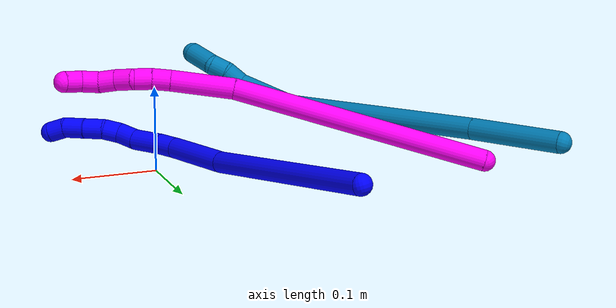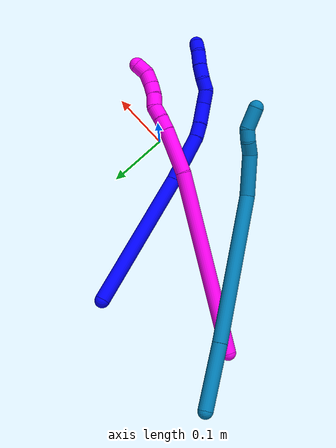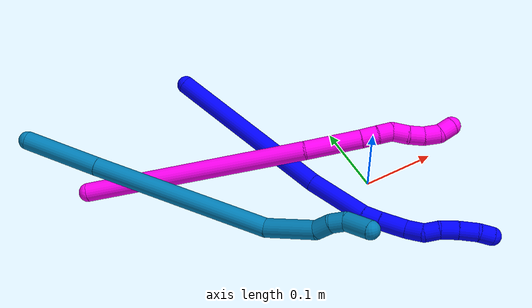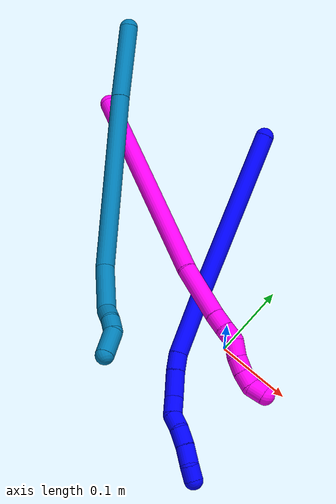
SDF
<sdf version="1.7">
 <world name="default">
  <model name="1">
   <static>0</static>
   <link name="1">
    <collision name="collision-cylinder-e_1_1_4">
     <pose>0.101535 -0.058134 -0.023524 1.95531 1.0175 1.38237</pose>
     <geometry><cylinder><radius>0.0125</radius><length>0.238681</length></cylinder></geometry>
     <surface>
      <friction><ode><mu>1.16</mu><mu2>1.16</mu2><slip1>0</slip1><slip2>0</slip2></ode></friction>
      <contact><ode><kp>1e+06</kp><kd>1</kd><max_vel>0</max_vel><min_depth>0.001</min_depth></ode></contact>
     </surface>
    </collision>
    <visual name="visual-cylinder-e_1_1_4">
     <pose>0.101535 -0.058134 -0.023524 1.95531 1.0175 1.38237</pose>
     <geometry><cylinder><radius>0.0125</radius><length>0.238681</length></cylinder></geometry>
     <material><ambient>0 0 1 1</ambient></material>
    </visual>
    <collision name="collision-cylinder-e_2_4_5">
     <pose>0.237876 -0.137309 -0.060192 2.12916 0.951533 1.49761</pose>
     <geometry><cylinder><radius>0.0125</radius><length>0.085487</length></cylinder></geometry>
     <surface>
      <friction><ode><mu>1.16</mu><mu2>1.16</mu2><slip1>0</slip1><slip2>0</slip2></ode></friction>
      <contact><ode><kp>1e+06</kp><kd>1</kd><max_vel>0</max_vel><min_depth>0.001</min_depth></ode></contact>
     </surface>
    </collision>
    <visual name="visual-cylinder-e_2_4_5">
     <pose>0.237876 -0.137309 -0.060192 2.12916 0.951533 1.49761</pose>
     <geometry><cylinder><radius>0.0125</radius><length>0.085487</length></cylinder></geometry>
     <material><ambient>0 0 1 1</ambient></material>
    </visual>
    <collision name="collision-cylinder-e_3_5_6">
     <pose>0.280825 -0.166013 -0.077671 2.08564 0.746467 1.1826</pose>
     <geometry><cylinder><radius>0.0125</radius><length>0.023983</length></cylinder></geometry>
     <surface>
      <friction><ode><mu>1.16</mu><mu2>1.16</mu2><slip1>0</slip1><slip2>0</slip2></ode></friction>
      <contact><ode><kp>1e+06</kp><kd>1</kd><max_vel>0</max_vel><min_depth>0.001</min_depth></ode></contact>
     </surface>
    </collision>
    <visual name="visual-cylinder-e_3_5_6">
     <pose>0.280825 -0.166013 -0.077671 2.08564 0.746467 1.1826</pose>
     <geometry><cylinder><radius>0.0125</radius><length>0.023983</length></cylinder></geometry>
     <material><ambient>0 0 1 1</ambient></material>
    </visual>
    <collision name="collision-cylinder-e_4_6_7">
     <pose>0.300408 -0.186726 -0.088112 2.00847 0.671065 1.00291</pose>
     <geometry><cylinder><radius>0.0125</radius><length>0.036797</length></cylinder></geometry>
     <surface>
      <friction><ode><mu>1.16</mu><mu2>1.16</mu2><slip1>0</slip1><slip2>0</slip2></ode></friction>
      <contact><ode><kp>1e+06</kp><kd>1</kd><max_vel>0</max_vel><min_depth>0.001</min_depth></ode></contact>
     </surface>
    </collision>
    <visual name="visual-cylinder-e_4_6_7">
     <pose>0.300408 -0.186726 -0.088112 2.00847 0.671065 1.00291</pose>
     <geometry><cylinder><radius>0.0125</radius><length>0.036797</length></cylinder></geometry>
     <material><ambient>0 0 1 1</ambient></material>
    </visual>
    <collision name="collision-cylinder-e_5_7_8">
     <pose>0.318911 -0.207614 -0.100344 2.23411 0.617372 1.15818</pose>
     <geometry><cylinder><radius>0.0125</radius><length>0.024397</length></cylinder></geometry>
     <surface>
      <friction><ode><mu>1.16</mu><mu2>1.16</mu2><slip1>0</slip1><slip2>0</slip2></ode></friction>
      <contact><ode><kp>1e+06</kp><kd>1</kd><max_vel>0</max_vel><min_depth>0.001</min_depth></ode></contact>
     </surface>
    </collision>
    <visual name="visual-cylinder-e_5_7_8">
     <pose>0.318911 -0.207614 -0.100344 2.23411 0.617372 1.15818</pose>
     <geometry><cylinder><radius>0.0125</radius><length>0.024397</length></cylinder></geometry>
     <material><ambient>0 0 1 1</ambient></material>
    </visual>
    <collision name="collision-cylinder-e_6_8_9">
     <pose>0.327604 -0.224318 -0.11143 2.08095 0.159218 0.270457</pose>
     <geometry><cylinder><radius>0.0125</radius><length>0.020581</length></cylinder></geometry>
     <surface>
      <friction><ode><mu>1.16</mu><mu2>1.16</mu2><slip1>0</slip1><slip2>0</slip2></ode></friction>
      <contact><ode><kp>1e+06</kp><kd>1</kd><max_vel>0</max_vel><min_depth>0.001</min_depth></ode></contact>
     </surface>
    </collision>
    <visual name="visual-cylinder-e_6_8_9">
     <pose>0.327604 -0.224318 -0.11143 2.08095 0.159218 0.270457</pose>
     <geometry><cylinder><radius>0.0125</radius><length>0.020581</length></cylinder></geometry>
     <material><ambient>0 0 1 1</ambient></material>
    </visual>
    <collision name="collision-cylinder-e_7_9_10">
     <pose>0.332927 -0.244196 -0.119938 1.8824 0.308879 0.421065</pose>
     <geometry><cylinder><radius>0.0125</radius><length>0.024286</length></cylinder></geometry>
     <surface>
      <friction><ode><mu>1.16</mu><mu2>1.16</mu2><slip1>0</slip1><slip2>0</slip2></ode></friction>
      <contact><ode><kp>1e+06</kp><kd>1</kd><max_vel>0</max_vel><min_depth>0.001</min_depth></ode></contact>
     </surface>
    </collision>
    <visual name="visual-cylinder-e_7_9_10">
     <pose>0.332927 -0.244196 -0.119938 1.8824 0.308879 0.421065</pose>
     <geometry><cylinder><radius>0.0125</radius><length>0.024286</length></cylinder></geometry>
     <material><ambient>0 0 1 1</ambient></material>
    </visual>
    <collision name="collision-cylinder-e_8_10_11">
     <pose>0.341734 -0.266354 -0.127057 1.88091 0.412116 0.55801</pose>
     <geometry><cylinder><radius>0.0125</radius><length>0.025548</length></cylinder></geometry>
     <surface>
      <friction><ode><mu>1.16</mu><mu2>1.16</mu2><slip1>0</slip1><slip2>0</slip2></ode></friction>
      <contact><ode><kp>1e+06</kp><kd>1</kd><max_vel>0</max_vel><min_depth>0.001</min_depth></ode></contact>
     </surface>
    </collision>
    <visual name="visual-cylinder-e_8_10_11">
     <pose>0.341734 -0.266354 -0.127057 1.88091 0.412116 0.55801</pose>
     <geometry><cylinder><radius>0.0125</radius><length>0.025548</length></cylinder></geometry>
     <material><ambient>0 0 1 1</ambient></material>
    </visual>
    <collision name="collision-cylinder-e_9_11_2">
     <pose>0.350822 -0.286804 -0.13036 1.54194 0.403279 0.392103</pose>
     <geometry><cylinder><radius>0.0125</radius><length>0.020239</length></cylinder></geometry>
     <surface>
      <friction><ode><mu>1.16</mu><mu2>1.16</mu2><slip1>0</slip1><slip2>0</slip2></ode></friction>
      <contact><ode><kp>1e+06</kp><kd>1</kd><max_vel>0</max_vel><min_depth>0.001</min_depth></ode></contact>
     </surface>
    </collision>
    <visual name="visual-cylinder-e_9_11_2">
     <pose>0.350822 -0.286804 -0.13036 1.54194 0.403279 0.392103</pose>
     <geometry><cylinder><radius>0.0125</radius><length>0.020239</length></cylinder></geometry>
     <material><ambient>0 0 1 1</ambient></material>
    </visual>
    <collision name="collision-sphere-2">
     <pose>0.354794 -0.296108 -0.130091 0 -0 0</pose>
     <geometry><sphere><radius>0.0125</radius></sphere></geometry>
     <surface>
      <friction><ode><mu>1.16</mu><mu2>1.16</mu2><slip1>0</slip1><slip2>0</slip2></ode></friction>
      <contact><ode><kp>1e+06</kp><kd>1</kd><max_vel>0</max_vel><min_depth>0.001</min_depth></ode></contact>
     </surface>
    </collision>
    <visual name="visual-sphere-2">
     <pose>0.354794 -0.296108 -0.130091 0 -0 0</pose>
     <geometry><sphere><radius>0.0125</radius></sphere></geometry>
     <material><ambient>0 0 1 1</ambient></material>
    </visual>
    <collision name="collision-sphere-11">
     <pose>0.346851 -0.2775 -0.130628 0 -0 0</pose>
     <geometry><sphere><radius>0.0125</radius></sphere></geometry>
     <surface>
      <friction><ode><mu>1.16</mu><mu2>1.16</mu2><slip1>0</slip1><slip2>0</slip2></ode></friction>
      <contact><ode><kp>1e+06</kp><kd>1</kd><max_vel>0</max_vel><min_depth>0.001</min_depth></ode></contact>
     </surface>
    </collision>
    <visual name="visual-sphere-11">
     <pose>0.346851 -0.2775 -0.130628 0 -0 0</pose>
     <geometry><sphere><radius>0.0125</radius></sphere></geometry>
     <material><ambient>0 0 1 1</ambient></material>
    </visual>
    <collision name="collision-sphere-10">
     <pose>0.336618 -0.255207 -0.123485 0 -0 0</pose>
     <geometry><sphere><radius>0.0125</radius></sphere></geometry>
     <surface>
      <friction><ode><mu>1.16</mu><mu2>1.16</mu2><slip1>0</slip1><slip2>0</slip2></ode></friction>
      <contact><ode><kp>1e+06</kp><kd>1</kd><max_vel>0</max_vel><min_depth>0.001</min_depth></ode></contact>
     </surface>
    </collision>
    <visual name="visual-sphere-10">
     <pose>0.336618 -0.255207 -0.123485 0 -0 0</pose>
     <geometry><sphere><radius>0.0125</radius></sphere></geometry>
     <material><ambient>0 0 1 1</ambient></material>
    </visual>
    <collision name="collision-sphere-9">
     <pose>0.329235 -0.233185 -0.116391 0 -0 0</pose>
     <geometry><sphere><radius>0.0125</radius></sphere></geometry>
     <surface>
      <friction><ode><mu>1.16</mu><mu2>1.16</mu2><slip1>0</slip1><slip2>0</slip2></ode></friction>
      <contact><ode><kp>1e+06</kp><kd>1</kd><max_vel>0</max_vel><min_depth>0.001</min_depth></ode></contact>
     </surface>
    </collision>
    <visual name="visual-sphere-9">
     <pose>0.329235 -0.233185 -0.116391 0 -0 0</pose>
     <geometry><sphere><radius>0.0125</radius></sphere></geometry>
     <material><ambient>0 0 1 1</ambient></material>
    </visual>
    <collision name="collision-sphere-4">
     <pose>0.203069 -0.116267 -0.047048 0 -0 0</pose>
     <geometry><sphere><radius>0.0125</radius></sphere></geometry>
     <surface>
      <friction><ode><mu>1.16</mu><mu2>1.16</mu2><slip1>0</slip1><slip2>0</slip2></ode></friction>
      <contact><ode><kp>1e+06</kp><kd>1</kd><max_vel>0</max_vel><min_depth>0.001</min_depth></ode></contact>
     </surface>
    </collision>
    <visual name="visual-sphere-4">
     <pose>0.203069 -0.116267 -0.047048 0 -0 0</pose>
     <geometry><sphere><radius>0.0125</radius></sphere></geometry>
     <material><ambient>0 0 1 1</ambient></material>
    </visual>
    <collision name="collision-sphere-1">
     <geometry><sphere><radius>0.0125</radius></sphere></geometry>
     <surface>
      <friction><ode><mu>1.16</mu><mu2>1.16</mu2><slip1>0</slip1><slip2>0</slip2></ode></friction>
      <contact><ode><kp>1e+06</kp><kd>1</kd><max_vel>0</max_vel><min_depth>0.001</min_depth></ode></contact>
     </surface>
    </collision>
    <visual name="visual-sphere-1">
     <geometry><sphere><radius>0.0125</radius></sphere></geometry>
     <material><ambient>0 0 1 1</ambient></material>
    </visual>
    <collision name="collision-sphere-8">
     <pose>0.325972 -0.215451 -0.106468 0 -0 0</pose>
     <geometry><sphere><radius>0.0125</radius></sphere></geometry>
     <surface>
      <friction><ode><mu>1.16</mu><mu2>1.16</mu2><slip1>0</slip1><slip2>0</slip2></ode></friction>
      <contact><ode><kp>1e+06</kp><kd>1</kd><max_vel>0</max_vel><min_depth>0.001</min_depth></ode></contact>
     </surface>
    </collision>
    <visual name="visual-sphere-8">
     <pose>0.325972 -0.215451 -0.106468 0 -0 0</pose>
     <geometry><sphere><radius>0.0125</radius></sphere></geometry>
     <material><ambient>0 0 1 1</ambient></material>
    </visual>
    <collision name="collision-sphere-5">
     <pose>0.272682 -0.158351 -0.073336 0 -0 0</pose>
     <geometry><sphere><radius>0.0125</radius></sphere></geometry>
     <surface>
      <friction><ode><mu>1.16</mu><mu2>1.16</mu2><slip1>0</slip1><slip2>0</slip2></ode></friction>
      <contact><ode><kp>1e+06</kp><kd>1</kd><max_vel>0</max_vel><min_depth>0.001</min_depth></ode></contact>
     </surface>
    </collision>
    <visual name="visual-sphere-5">
     <pose>0.272682 -0.158351 -0.073336 0 -0 0</pose>
     <geometry><sphere><radius>0.0125</radius></sphere></geometry>
     <material><ambient>0 0 1 1</ambient></material>
    </visual>
    <collision name="collision-sphere-6">
     <pose>0.288968 -0.173675 -0.082005 0 -0 0</pose>
     <geometry><sphere><radius>0.0125</radius></sphere></geometry>
     <surface>
      <friction><ode><mu>1.16</mu><mu2>1.16</mu2><slip1>0</slip1><slip2>0</slip2></ode></friction>
      <contact><ode><kp>1e+06</kp><kd>1</kd><max_vel>0</max_vel><min_depth>0.001</min_depth></ode></contact>
     </surface>
    </collision>
    <visual name="visual-sphere-6">
     <pose>0.288968 -0.173675 -0.082005 0 -0 0</pose>
     <geometry><sphere><radius>0.0125</radius></sphere></geometry>
     <material><ambient>0 0 1 1</ambient></material>
    </visual>
    <collision name="collision-sphere-7">
     <pose>0.311849 -0.199776 -0.09422 0 -0 0</pose>
     <geometry><sphere><radius>0.0125</radius></sphere></geometry>
     <surface>
      <friction><ode><mu>1.16</mu><mu2>1.16</mu2><slip1>0</slip1><slip2>0</slip2></ode></friction>
      <contact><ode><kp>1e+06</kp><kd>1</kd><max_vel>0</max_vel><min_depth>0.001</min_depth></ode></contact>
     </surface>
    </collision>
    <visual name="visual-sphere-7">
     <pose>0.311849 -0.199776 -0.09422 0 -0 0</pose>
     <geometry><sphere><radius>0.0125</radius></sphere></geometry>
     <material><ambient>0 0 1 1</ambient></material>
    </visual>
    <inertial>
     <pose>0.201597 -0.129376 -0.058808 0 -0 0</pose>
     <mass>0.5</mass>
     <inertia>
      <ixx>0.000784</ixx>
      <ixy>0</ixy>
      <ixz>0</ixz>
      <iyy>0.001451</iyy>
      <iyz>0</iyz>
      <izz>-0.000439</izz>
     </inertia>
    </inertial>
   </link>
   <pose>-0.146934 0.25477 0.038023 2.90263 0.219946 -1.78823</pose>
  </model>
  <model name="9">
   <static>0</static>
   <link name="9">
    <collision name="collision-cylinder-e_1_1_4">
     <pose>0.007517 -0.023197 -0.047688 2.68886 0.140802 0.594232</pose>
     <geometry><cylinder><radius>0.0125</radius><length>0.107121</length></cylinder></geometry>
     <surface>
      <friction><ode><mu>1.16</mu><mu2>1.16</mu2><slip1>0</slip1><slip2>0</slip2></ode></friction>
      <contact><ode><kp>1e+06</kp><kd>1</kd><max_vel>0</max_vel><min_depth>0.001</min_depth></ode></contact>
     </surface>
    </collision>
    <visual name="visual-cylinder-e_1_1_4">
     <pose>0.007517 -0.023197 -0.047688 2.68886 0.140802 0.594232</pose>
     <geometry><cylinder><radius>0.0125</radius><length>0.107121</length></cylinder></geometry>
     <material><ambient>0 0.490196 0.709804 1</ambient></material>
    </visual>
    <collision name="collision-cylinder-e_2_4_5">
     <pose>0.028626 -0.099074 -0.204893 2.69324 0.111387 0.479614</pose>
     <geometry><cylinder><radius>0.0125</radius><length>0.244574</length></cylinder></geometry>
     <surface>
      <friction><ode><mu>1.16</mu><mu2>1.16</mu2><slip1>0</slip1><slip2>0</slip2></ode></friction>
      <contact><ode><kp>1e+06</kp><kd>1</kd><max_vel>0</max_vel><min_depth>0.001</min_depth></ode></contact>
     </surface>
    </collision>
    <visual name="visual-cylinder-e_2_4_5">
     <pose>0.028626 -0.099074 -0.204893 2.69324 0.111387 0.479614</pose>
     <geometry><cylinder><radius>0.0125</radius><length>0.244574</length></cylinder></geometry>
     <material><ambient>0 0.490196 0.709804 1</ambient></material>
    </visual>
    <collision name="collision-cylinder-e_3_5_6">
     <pose>0.04898 -0.155778 -0.347911 3.02209 0.197757 2.0563</pose>
     <geometry><cylinder><radius>0.0125</radius><length>0.068824</length></cylinder></geometry>
     <surface>
      <friction><ode><mu>1.16</mu><mu2>1.16</mu2><slip1>0</slip1><slip2>0</slip2></ode></friction>
      <contact><ode><kp>1e+06</kp><kd>1</kd><max_vel>0</max_vel><min_depth>0.001</min_depth></ode></contact>
     </surface>
    </collision>
    <visual name="visual-cylinder-e_3_5_6">
     <pose>0.04898 -0.155778 -0.347911 3.02209 0.197757 2.0563</pose>
     <geometry><cylinder><radius>0.0125</radius><length>0.068824</length></cylinder></geometry>
     <material><ambient>0 0.490196 0.709804 1</ambient></material>
    </visual>
    <collision name="collision-cylinder-e_4_6_7">
     <pose>0.058408 -0.156175 -0.39195 -2.81031 0.234885 -1.22917</pose>
     <geometry><cylinder><radius>0.0125</radius><length>0.022919</length></cylinder></geometry>
     <surface>
      <friction><ode><mu>1.16</mu><mu2>1.16</mu2><slip1>0</slip1><slip2>0</slip2></ode></friction>
      <contact><ode><kp>1e+06</kp><kd>1</kd><max_vel>0</max_vel><min_depth>0.001</min_depth></ode></contact>
     </surface>
    </collision>
    <visual name="visual-cylinder-e_4_6_7">
     <pose>0.058408 -0.156175 -0.39195 -2.81031 0.234885 -1.22917</pose>
     <geometry><cylinder><radius>0.0125</radius><length>0.022919</length></cylinder></geometry>
     <material><ambient>0 0.490196 0.709804 1</ambient></material>
    </visual>
    <collision name="collision-cylinder-e_5_7_8">
     <pose>0.062477 -0.15205 -0.412388 -3.09109 0.140539 -2.45254</pose>
     <geometry><cylinder><radius>0.0125</radius><length>0.020022</length></cylinder></geometry>
     <surface>
      <friction><ode><mu>1.16</mu><mu2>1.16</mu2><slip1>0</slip1><slip2>0</slip2></ode></friction>
      <contact><ode><kp>1e+06</kp><kd>1</kd><max_vel>0</max_vel><min_depth>0.001</min_depth></ode></contact>
     </surface>
    </collision>
    <visual name="visual-cylinder-e_5_7_8">
     <pose>0.062477 -0.15205 -0.412388 -3.09109 0.140539 -2.45254</pose>
     <geometry><cylinder><radius>0.0125</radius><length>0.020022</length></cylinder></geometry>
     <material><ambient>0 0.490196 0.709804 1</ambient></material>
    </visual>
    <collision name="collision-cylinder-e_6_8_2">
     <pose>0.071931 -0.157066 -0.437733 2.79857 0.456357 1.85986</pose>
     <geometry><cylinder><radius>0.0125</radius><length>0.036541</length></cylinder></geometry>
     <surface>
      <friction><ode><mu>1.16</mu><mu2>1.16</mu2><slip1>0</slip1><slip2>0</slip2></ode></friction>
      <contact><ode><kp>1e+06</kp><kd>1</kd><max_vel>0</max_vel><min_depth>0.001</min_depth></ode></contact>
     </surface>
    </collision>
    <visual name="visual-cylinder-e_6_8_2">
     <pose>0.071931 -0.157066 -0.437733 2.79857 0.456357 1.85986</pose>
     <geometry><cylinder><radius>0.0125</radius><length>0.036541</length></cylinder></geometry>
     <material><ambient>0 0.490196 0.709804 1</ambient></material>
    </visual>
    <collision name="collision-sphere-2">
     <pose>0.079982 -0.162582 -0.453179 0 -0 0</pose>
     <geometry><sphere><radius>0.0125</radius></sphere></geometry>
     <surface>
      <friction><ode><mu>1.16</mu><mu2>1.16</mu2><slip1>0</slip1><slip2>0</slip2></ode></friction>
      <contact><ode><kp>1e+06</kp><kd>1</kd><max_vel>0</max_vel><min_depth>0.001</min_depth></ode></contact>
     </surface>
    </collision>
    <visual name="visual-sphere-2">
     <pose>0.079982 -0.162582 -0.453179 0 -0 0</pose>
     <geometry><sphere><radius>0.0125</radius></sphere></geometry>
     <material><ambient>0 0.490196 0.709804 1</ambient></material>
    </visual>
    <collision name="collision-sphere-4">
     <pose>0.015033 -0.046394 -0.095375 0 -0 0</pose>
     <geometry><sphere><radius>0.0125</radius></sphere></geometry>
     <surface>
      <friction><ode><mu>1.16</mu><mu2>1.16</mu2><slip1>0</slip1><slip2>0</slip2></ode></friction>
      <contact><ode><kp>1e+06</kp><kd>1</kd><max_vel>0</max_vel><min_depth>0.001</min_depth></ode></contact>
     </surface>
    </collision>
    <visual name="visual-sphere-4">
     <pose>0.015033 -0.046394 -0.095375 0 -0 0</pose>
     <geometry><sphere><radius>0.0125</radius></sphere></geometry>
     <material><ambient>0 0.490196 0.709804 1</ambient></material>
    </visual>
    <collision name="collision-sphere-1">
     <geometry><sphere><radius>0.0125</radius></sphere></geometry>
     <surface>
      <friction><ode><mu>1.16</mu><mu2>1.16</mu2><slip1>0</slip1><slip2>0</slip2></ode></friction>
      <contact><ode><kp>1e+06</kp><kd>1</kd><max_vel>0</max_vel><min_depth>0.001</min_depth></ode></contact>
     </surface>
    </collision>
    <visual name="visual-sphere-1">
     <geometry><sphere><radius>0.0125</radius></sphere></geometry>
     <material><ambient>0 0.490196 0.709804 1</ambient></material>
    </visual>
    <collision name="collision-sphere-8">
     <pose>0.063879 -0.151549 -0.422288 0 -0 0</pose>
     <geometry><sphere><radius>0.0125</radius></sphere></geometry>
     <surface>
      <friction><ode><mu>1.16</mu><mu2>1.16</mu2><slip1>0</slip1><slip2>0</slip2></ode></friction>
      <contact><ode><kp>1e+06</kp><kd>1</kd><max_vel>0</max_vel><min_depth>0.001</min_depth></ode></contact>
     </surface>
    </collision>
    <visual name="visual-sphere-8">
     <pose>0.063879 -0.151549 -0.422288 0 -0 0</pose>
     <geometry><sphere><radius>0.0125</radius></sphere></geometry>
     <material><ambient>0 0.490196 0.709804 1</ambient></material>
    </visual>
    <collision name="collision-sphere-5">
     <pose>0.042219 -0.151755 -0.31441 0 -0 0</pose>
     <geometry><sphere><radius>0.0125</radius></sphere></geometry>
     <surface>
      <friction><ode><mu>1.16</mu><mu2>1.16</mu2><slip1>0</slip1><slip2>0</slip2></ode></friction>
      <contact><ode><kp>1e+06</kp><kd>1</kd><max_vel>0</max_vel><min_depth>0.001</min_depth></ode></contact>
     </surface>
    </collision>
    <visual name="visual-sphere-5">
     <pose>0.042219 -0.151755 -0.31441 0 -0 0</pose>
     <geometry><sphere><radius>0.0125</radius></sphere></geometry>
     <material><ambient>0 0.490196 0.709804 1</ambient></material>
    </visual>
    <collision name="collision-sphere-6">
     <pose>0.055741 -0.1598 -0.381411 0 -0 0</pose>
     <geometry><sphere><radius>0.0125</radius></sphere></geometry>
     <surface>
      <friction><ode><mu>1.16</mu><mu2>1.16</mu2><slip1>0</slip1><slip2>0</slip2></ode></friction>
      <contact><ode><kp>1e+06</kp><kd>1</kd><max_vel>0</max_vel><min_depth>0.001</min_depth></ode></contact>
     </surface>
    </collision>
    <visual name="visual-sphere-6">
     <pose>0.055741 -0.1598 -0.381411 0 -0 0</pose>
     <geometry><sphere><radius>0.0125</radius></sphere></geometry>
     <material><ambient>0 0.490196 0.709804 1</ambient></material>
    </visual>
    <collision name="collision-sphere-7">
     <pose>0.061075 -0.15255 -0.402489 0 -0 0</pose>
     <geometry><sphere><radius>0.0125</radius></sphere></geometry>
     <surface>
      <friction><ode><mu>1.16</mu><mu2>1.16</mu2><slip1>0</slip1><slip2>0</slip2></ode></friction>
      <contact><ode><kp>1e+06</kp><kd>1</kd><max_vel>0</max_vel><min_depth>0.001</min_depth></ode></contact>
     </surface>
    </collision>
    <visual name="visual-sphere-7">
     <pose>0.061075 -0.15255 -0.402489 0 -0 0</pose>
     <geometry><sphere><radius>0.0125</radius></sphere></geometry>
     <material><ambient>0 0.490196 0.709804 1</ambient></material>
    </visual>
    <inertial>
     <pose>0.032791 -0.0996 -0.224799 0 -0 0</pose>
     <mass>0.5</mass>
     <inertia>
      <ixx>0.001812</ixx>
      <ixy>0</ixy>
      <ixz>0</ixz>
      <iyy>-0.000376</iyy>
      <iyz>0</iyz>
      <izz>0.000384</izz>
     </inertia>
    </inertial>
   </link>
   <pose>-0.388394 0.249931 0.058576 1.91778 -0.656235 -2.34908</pose>
  </model>
  <model name="10">
   <static>0</static>
   <link name="10">
    <collision name="collision-cylinder-e_1_1_4">
     <pose>0.129584 -0.049763 -0.056627 2.42062 1.0439 1.98126</pose>
     <geometry><cylinder><radius>0.0125</radius><length>0.299833</length></cylinder></geometry>
     <surface>
      <friction><ode><mu>1.16</mu><mu2>1.16</mu2><slip1>0</slip1><slip2>0</slip2></ode></friction>
      <contact><ode><kp>1e+06</kp><kd>1</kd><max_vel>0</max_vel><min_depth>0.001</min_depth></ode></contact>
     </surface>
    </collision>
    <visual name="visual-cylinder-e_1_1_4">
     <pose>0.129584 -0.049763 -0.056627 2.42062 1.0439 1.98126</pose>
     <geometry><cylinder><radius>0.0125</radius><length>0.299833</length></cylinder></geometry>
     <material><ambient>1 0 0.964706 1</ambient></material>
    </visual>
    <collision name="collision-cylinder-e_2_4_5">
     <pose>0.287722 -0.113103 -0.132596 2.5296 0.879471 1.95888</pose>
     <geometry><cylinder><radius>0.0125</radius><length>0.074129</length></cylinder></geometry>
     <surface>
      <friction><ode><mu>1.16</mu><mu2>1.16</mu2><slip1>0</slip1><slip2>0</slip2></ode></friction>
      <contact><ode><kp>1e+06</kp><kd>1</kd><max_vel>0</max_vel><min_depth>0.001</min_depth></ode></contact>
     </surface>
    </collision>
    <visual name="visual-cylinder-e_2_4_5">
     <pose>0.287722 -0.113103 -0.132596 2.5296 0.879471 1.95888</pose>
     <geometry><cylinder><radius>0.0125</radius><length>0.074129</length></cylinder></geometry>
     <material><ambient>1 0 0.964706 1</ambient></material>
    </visual>
    <collision name="collision-cylinder-e_3_5_6">
     <pose>0.324274 -0.130444 -0.158337 2.60981 0.822552 2.02523</pose>
     <geometry><cylinder><radius>0.0125</radius><length>0.021827</length></cylinder></geometry>
     <surface>
      <friction><ode><mu>1.16</mu><mu2>1.16</mu2><slip1>0</slip1><slip2>0</slip2></ode></friction>
      <contact><ode><kp>1e+06</kp><kd>1</kd><max_vel>0</max_vel><min_depth>0.001</min_depth></ode></contact>
     </surface>
    </collision>
    <visual name="visual-cylinder-e_3_5_6">
     <pose>0.324274 -0.130444 -0.158337 2.60981 0.822552 2.02523</pose>
     <geometry><cylinder><radius>0.0125</radius><length>0.021827</length></cylinder></geometry>
     <material><ambient>1 0 0.964706 1</ambient></material>
    </visual>
    <collision name="collision-cylinder-e_4_6_7">
     <pose>0.338915 -0.138086 -0.171406 2.61501 0.710844 1.88543</pose>
     <geometry><cylinder><radius>0.0125</radius><length>0.020359</length></cylinder></geometry>
     <surface>
      <friction><ode><mu>1.16</mu><mu2>1.16</mu2><slip1>0</slip1><slip2>0</slip2></ode></friction>
      <contact><ode><kp>1e+06</kp><kd>1</kd><max_vel>0</max_vel><min_depth>0.001</min_depth></ode></contact>
     </surface>
    </collision>
    <visual name="visual-cylinder-e_4_6_7">
     <pose>0.338915 -0.138086 -0.171406 2.61501 0.710844 1.88543</pose>
     <geometry><cylinder><radius>0.0125</radius><length>0.020359</length></cylinder></geometry>
     <material><ambient>1 0 0.964706 1</ambient></material>
    </visual>
    <collision name="collision-cylinder-e_5_7_8">
     <pose>0.352705 -0.149423 -0.181336 1.98286 0.720514 1.04481</pose>
     <geometry><cylinder><radius>0.0125</radius><length>0.02167</length></cylinder></geometry>
     <surface>
      <friction><ode><mu>1.16</mu><mu2>1.16</mu2><slip1>0</slip1><slip2>0</slip2></ode></friction>
      <contact><ode><kp>1e+06</kp><kd>1</kd><max_vel>0</max_vel><min_depth>0.001</min_depth></ode></contact>
     </surface>
    </collision>
    <visual name="visual-cylinder-e_5_7_8">
     <pose>0.352705 -0.149423 -0.181336 1.98286 0.720514 1.04481</pose>
     <geometry><cylinder><radius>0.0125</radius><length>0.02167</length></cylinder></geometry>
     <material><ambient>1 0 0.964706 1</ambient></material>
    </visual>
    <collision name="collision-cylinder-e_6_8_9">
     <pose>0.365964 -0.163257 -0.189596 2.23598 0.64628 1.20568</pose>
     <geometry><cylinder><radius>0.0125</radius><length>0.020292</length></cylinder></geometry>
     <surface>
      <friction><ode><mu>1.16</mu><mu2>1.16</mu2><slip1>0</slip1><slip2>0</slip2></ode></friction>
      <contact><ode><kp>1e+06</kp><kd>1</kd><max_vel>0</max_vel><min_depth>0.001</min_depth></ode></contact>
     </surface>
    </collision>
    <visual name="visual-cylinder-e_6_8_9">
     <pose>0.365964 -0.163257 -0.189596 2.23598 0.64628 1.20568</pose>
     <geometry><cylinder><radius>0.0125</radius><length>0.020292</length></cylinder></geometry>
     <material><ambient>1 0 0.964706 1</ambient></material>
    </visual>
    <collision name="collision-cylinder-e_7_9_10">
     <pose>0.379719 -0.174231 -0.200438 2.4744 0.799224 1.7673</pose>
     <geometry><cylinder><radius>0.0125</radius><length>0.021331</length></cylinder></geometry>
     <surface>
      <friction><ode><mu>1.16</mu><mu2>1.16</mu2><slip1>0</slip1><slip2>0</slip2></ode></friction>
      <contact><ode><kp>1e+06</kp><kd>1</kd><max_vel>0</max_vel><min_depth>0.001</min_depth></ode></contact>
     </surface>
    </collision>
    <visual name="visual-cylinder-e_7_9_10">
     <pose>0.379719 -0.174231 -0.200438 2.4744 0.799224 1.7673</pose>
     <geometry><cylinder><radius>0.0125</radius><length>0.021331</length></cylinder></geometry>
     <material><ambient>1 0 0.964706 1</ambient></material>
    </visual>
    <collision name="collision-cylinder-e_8_10_2">
     <pose>0.392895 -0.179966 -0.21487 3.01048 0.568066 2.69918</pose>
     <geometry><cylinder><radius>0.0125</radius><length>0.020559</length></cylinder></geometry>
     <surface>
      <friction><ode><mu>1.16</mu><mu2>1.16</mu2><slip1>0</slip1><slip2>0</slip2></ode></friction>
      <contact><ode><kp>1e+06</kp><kd>1</kd><max_vel>0</max_vel><min_depth>0.001</min_depth></ode></contact>
     </surface>
    </collision>
    <visual name="visual-cylinder-e_8_10_2">
     <pose>0.392895 -0.179966 -0.21487 3.01048 0.568066 2.69918</pose>
     <geometry><cylinder><radius>0.0125</radius><length>0.020559</length></cylinder></geometry>
     <material><ambient>1 0 0.964706 1</ambient></material>
    </visual>
    <collision name="collision-sphere-2">
     <pose>0.398425 -0.181099 -0.223461 0 -0 0</pose>
     <geometry><sphere><radius>0.0125</radius></sphere></geometry>
     <surface>
      <friction><ode><mu>1.16</mu><mu2>1.16</mu2><slip1>0</slip1><slip2>0</slip2></ode></friction>
      <contact><ode><kp>1e+06</kp><kd>1</kd><max_vel>0</max_vel><min_depth>0.001</min_depth></ode></contact>
     </surface>
    </collision>
    <visual name="visual-sphere-2">
     <pose>0.398425 -0.181099 -0.223461 0 -0 0</pose>
     <geometry><sphere><radius>0.0125</radius></sphere></geometry>
     <material><ambient>1 0 0.964706 1</ambient></material>
    </visual>
    <collision name="collision-sphere-10">
     <pose>0.387364 -0.178833 -0.20628 0 -0 0</pose>
     <geometry><sphere><radius>0.0125</radius></sphere></geometry>
     <surface>
      <friction><ode><mu>1.16</mu><mu2>1.16</mu2><slip1>0</slip1><slip2>0</slip2></ode></friction>
      <contact><ode><kp>1e+06</kp><kd>1</kd><max_vel>0</max_vel><min_depth>0.001</min_depth></ode></contact>
     </surface>
    </collision>
    <visual name="visual-sphere-10">
     <pose>0.387364 -0.178833 -0.20628 0 -0 0</pose>
     <geometry><sphere><radius>0.0125</radius></sphere></geometry>
     <material><ambient>1 0 0.964706 1</ambient></material>
    </visual>
    <collision name="collision-sphere-9">
     <pose>0.372074 -0.16963 -0.194596 0 -0 0</pose>
     <geometry><sphere><radius>0.0125</radius></sphere></geometry>
     <surface>
      <friction><ode><mu>1.16</mu><mu2>1.16</mu2><slip1>0</slip1><slip2>0</slip2></ode></friction>
      <contact><ode><kp>1e+06</kp><kd>1</kd><max_vel>0</max_vel><min_depth>0.001</min_depth></ode></contact>
     </surface>
    </collision>
    <visual name="visual-sphere-9">
     <pose>0.372074 -0.16963 -0.194596 0 -0 0</pose>
     <geometry><sphere><radius>0.0125</radius></sphere></geometry>
     <material><ambient>1 0 0.964706 1</ambient></material>
    </visual>
    <collision name="collision-sphere-4">
     <pose>0.259167 -0.099527 -0.113254 0 -0 0</pose>
     <geometry><sphere><radius>0.0125</radius></sphere></geometry>
     <surface>
      <friction><ode><mu>1.16</mu><mu2>1.16</mu2><slip1>0</slip1><slip2>0</slip2></ode></friction>
      <contact><ode><kp>1e+06</kp><kd>1</kd><max_vel>0</max_vel><min_depth>0.001</min_depth></ode></contact>
     </surface>
    </collision>
    <visual name="visual-sphere-4">
     <pose>0.259167 -0.099527 -0.113254 0 -0 0</pose>
     <geometry><sphere><radius>0.0125</radius></sphere></geometry>
     <material><ambient>1 0 0.964706 1</ambient></material>
    </visual>
    <collision name="collision-sphere-1">
     <geometry><sphere><radius>0.0125</radius></sphere></geometry>
     <surface>
      <friction><ode><mu>1.16</mu><mu2>1.16</mu2><slip1>0</slip1><slip2>0</slip2></ode></friction>
      <contact><ode><kp>1e+06</kp><kd>1</kd><max_vel>0</max_vel><min_depth>0.001</min_depth></ode></contact>
     </surface>
    </collision>
    <visual name="visual-sphere-1">
     <geometry><sphere><radius>0.0125</radius></sphere></geometry>
     <material><ambient>1 0 0.964706 1</ambient></material>
    </visual>
    <collision name="collision-sphere-8">
     <pose>0.359854 -0.156884 -0.184597 0 -0 0</pose>
     <geometry><sphere><radius>0.0125</radius></sphere></geometry>
     <surface>
      <friction><ode><mu>1.16</mu><mu2>1.16</mu2><slip1>0</slip1><slip2>0</slip2></ode></friction>
      <contact><ode><kp>1e+06</kp><kd>1</kd><max_vel>0</max_vel><min_depth>0.001</min_depth></ode></contact>
     </surface>
    </collision>
    <visual name="visual-sphere-8">
     <pose>0.359854 -0.156884 -0.184597 0 -0 0</pose>
     <geometry><sphere><radius>0.0125</radius></sphere></geometry>
     <material><ambient>1 0 0.964706 1</ambient></material>
    </visual>
    <collision name="collision-sphere-5">
     <pose>0.316276 -0.126679 -0.151938 0 -0 0</pose>
     <geometry><sphere><radius>0.0125</radius></sphere></geometry>
     <surface>
      <friction><ode><mu>1.16</mu><mu2>1.16</mu2><slip1>0</slip1><slip2>0</slip2></ode></friction>
      <contact><ode><kp>1e+06</kp><kd>1</kd><max_vel>0</max_vel><min_depth>0.001</min_depth></ode></contact>
     </surface>
    </collision>
    <visual name="visual-sphere-5">
     <pose>0.316276 -0.126679 -0.151938 0 -0 0</pose>
     <geometry><sphere><radius>0.0125</radius></sphere></geometry>
     <material><ambient>1 0 0.964706 1</ambient></material>
    </visual>
    <collision name="collision-sphere-6">
     <pose>0.332273 -0.134209 -0.164737 0 -0 0</pose>
     <geometry><sphere><radius>0.0125</radius></sphere></geometry>
     <surface>
      <friction><ode><mu>1.16</mu><mu2>1.16</mu2><slip1>0</slip1><slip2>0</slip2></ode></friction>
      <contact><ode><kp>1e+06</kp><kd>1</kd><max_vel>0</max_vel><min_depth>0.001</min_depth></ode></contact>
     </surface>
    </collision>
    <visual name="visual-sphere-6">
     <pose>0.332273 -0.134209 -0.164737 0 -0 0</pose>
     <geometry><sphere><radius>0.0125</radius></sphere></geometry>
     <material><ambient>1 0 0.964706 1</ambient></material>
    </visual>
    <collision name="collision-sphere-7">
     <pose>0.345556 -0.141963 -0.178075 0 -0 0</pose>
     <geometry><sphere><radius>0.0125</radius></sphere></geometry>
     <surface>
      <friction><ode><mu>1.16</mu><mu2>1.16</mu2><slip1>0</slip1><slip2>0</slip2></ode></friction>
      <contact><ode><kp>1e+06</kp><kd>1</kd><max_vel>0</max_vel><min_depth>0.001</min_depth></ode></contact>
     </surface>
    </collision>
    <visual name="visual-sphere-7">
     <pose>0.345556 -0.141963 -0.178075 0 -0 0</pose>
     <geometry><sphere><radius>0.0125</radius></sphere></geometry>
     <material><ambient>1 0 0.964706 1</ambient></material>
    </visual>
    <inertial>
     <pose>0.210813 -0.085861 -0.100447 0 -0 0</pose>
     <mass>0.5</mass>
     <inertia>
      <ixx>0.000637</ixx>
      <ixy>0</ixy>
      <ixz>0</ixz>
      <iyy>0.002945</iyy>
      <iyz>0</iyz>
      <izz>-0.001237</izz>
     </inertia>
    </inertial>
   </link>
   <pose>-0.344982 0.15938 0.018725 1.22029 -0.74152 -0.735131</pose>
  </model>
 </world>
</sdf>
